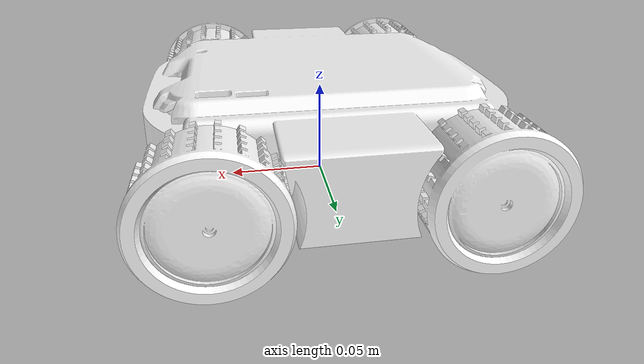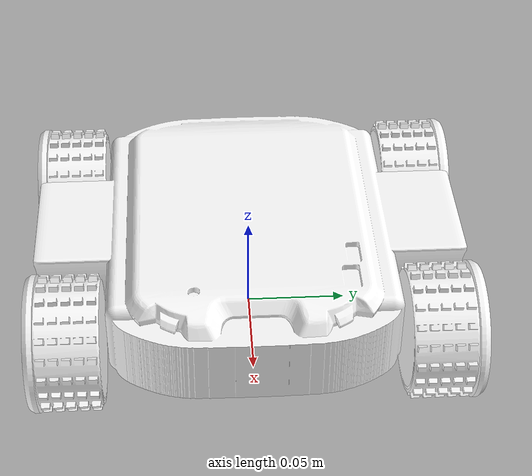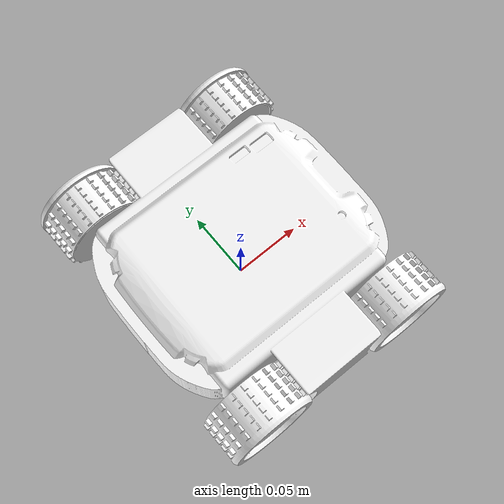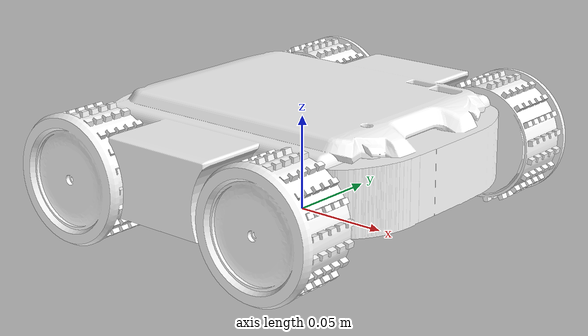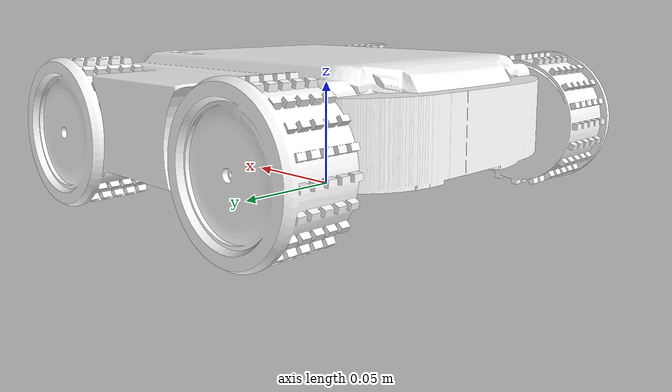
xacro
<?xml version="1.0"?>
<robot xmlns:xacro="http://ros.org/wiki/xacro" name="sphero_rvr">

  <xacro:include filename="$(find sphero_rvr_description)/model/sphero_rvr.urdf.xacro" />

  <xacro:arg name="name" default="rvr" />

  <link name="odom" />

  <xacro:sphero_rvr name="$(arg name)" parent="odom">
    <origin xyz="0.0 0.0 0.0"/>
  </xacro:sphero_rvr>

</robot>

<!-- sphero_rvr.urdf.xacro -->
<robot xmlns:xacro="http://ros.org/wiki/xacro" >

  <xacro:include filename="$(find sphero_rvr_description)/model/materials.urdf"/>
  <xacro:include filename="$(find sphero_rvr_description)/model/sphero_rvr.inertia.xacro"/>
  <xacro:include filename="$(find sphero_rvr_description)/model/sphero_rvr.transmission.xacro"/>
  <!-- Contains macro to create transmissions for simulation -->
  <xacro:include filename="$(find sphero_rvr_description)/model/sphero_rvr.transmission.gazebo.xacro"/>

  <xacro:property name="M_PI" value="3.1415926535897931" />
  <xacro:property name="velocity_scale_factor" value="1.0"/>

  <xacro:macro name="sphero_rvr" params="parent name *origin sim:=^|false">

    <!-- The base fixed to its parent. -->
    <joint name="${parent}_${name}_base_joint" type="fixed">
      <xacro:insert_block name="origin"/>
      <parent link="${parent}"/>
      <child link="${name}_base_link"/>
    </joint>

    <link name="${name}_base_link">
      <inertial>
        <xacro:insert_block name="negligible_inertia"/>
      </inertial>
      <visual>
        <origin xyz="-0.017 -0.101 0.017" rpy="0 0 0"/>
        <geometry>
          <mesh filename="package://sphero_rvr_description/meshes/Sphero_Base.stl" scale="0.001 0.001 0.001" />
        </geometry>
        <material name="SpheroRVR/White"/>
      </visual>
      <collision>
        <origin xyz="0.0 0.0 0.04" rpy="0 0 0"/>
        <geometry>
          <box size="0.2 0.13 0.06"/>
        </geometry>
      </collision>
    </link>

    <!-- Left Front/Rear Wheel -->
    <joint name="${name}_wheel_fl_joint" type="fixed">
      <origin xyz="0.059 0.09 0.03" rpy="0 90 0"/>
      <axis xyz="0 1 0"/>
      <limit effort="30" velocity="1.0" />
      <safety_controller k_velocity="10" k_position="15"  />
      <dynamics friction="1.0" damping="1.0"/>
      <parent link="${name}_base_link"/>
      <child link="${name}_wheel_fl_link"/>
    </joint>

    <joint name="${name}_wheel_rl_joint" type="fixed">
      <origin xyz="-0.059 0.09 0.03" rpy="0 0 0"/>
      <mimic joint="${name}_wheel_fl_joint" multiplier="1" offset="0" />
      <axis xyz="0 1 0"/>
      <limit effort="30" velocity="1.0" />
      <safety_controller k_velocity="10" k_position="15"  />
      <dynamics friction="1.0" damping="1.0"/>
      <parent link="${name}_base_link"/>
      <child link="${name}_wheel_rl_link"/>
    </joint>

    <link name="${name}_wheel_fl_link">
      <inertial>
        <xacro:insert_block name="negligible_inertia"/>
      </inertial>
      <visual>
        <origin xyz="-0.042 0 -0.033" rpy="0 0 0"/>
        <geometry>
           <mesh filename="package://sphero_rvr_description/meshes/Sphero_Wheel_L.stl" scale="0.001 0.001 0.001" />
        </geometry>
        <material name="SpheroRVR/White"/>
      </visual>
      <collision>
        <origin xyz="0.0 0 0.0" rpy="${M_PI/2} 0 0"/>
        <geometry>
          <cylinder radius="0.033" length="0.03"/>
        </geometry>
      </collision>
    </link>

    <link name="${name}_wheel_rl_link">
      <inertial>
        <xacro:insert_block name="negligible_inertia"/>
      </inertial>
      <visual>
        <origin xyz="-0.042 0 -0.033" rpy="0 0 0"/>
        <geometry>
           <mesh filename="package://sphero_rvr_description/meshes/Sphero_Wheel_L.stl" scale="0.001 0.001 0.001" />
        </geometry>
        <material name="SpheroRVR/White"/>
      </visual>
      <collision>
        <origin xyz="0.0 0 0.0" rpy="${M_PI/2} 0 0"/>
        <geometry>
          <cylinder radius="0.033" length="0.03"/>
        </geometry>
      </collision>
    </link>

    <!-- Right Front/Rear Wheel -->
    <joint name="${name}_wheel_fr_joint" type="fixed">
      <origin xyz="0.059 -0.09 0.03" rpy="0 90 0"/>
      <axis xyz="0 1 0"/>
      <limit effort="30" velocity="1.0" />
      <safety_controller k_velocity="10" k_position="15"  />
      <dynamics friction="1.0" damping="1.0"/>
      <parent link="${name}_base_link"/>
      <child link="${name}_wheel_fr_link"/>
    </joint>

    <joint name="${name}_wheel_rr_joint" type="fixed">
      <origin xyz="-0.059 -0.09 0.03" rpy="0 0 0"/>
      <mimic joint="${name}_wheel_fr_joint" multiplier="1" offset="0" />
      <axis xyz="0 1 0"/>
      <limit effort="30" velocity="1.0" />
      <safety_controller k_velocity="10" k_position="15"  />
      <dynamics friction="1.0" damping="1.0"/>
      <parent link="${name}_base_link"/>
      <child link="${name}_wheel_rr_link"/>
    </joint>

    <link name="${name}_wheel_fr_link">
      <inertial>
        <xacro:insert_block name="negligible_inertia"/>
      </inertial>
      <visual>
        <origin xyz="-0.042 0 -0.033" rpy="0 0 0"/>
        <geometry>
           <mesh filename="package://sphero_rvr_description/meshes/Sphero_Wheel_R.stl" scale="0.001 0.001 0.001" />
        </geometry>
        <material name="SpheroRVR/White"/>
      </visual>
      <collision>
        <origin xyz="0.0 0 0.0" rpy="${M_PI/2} 0 0"/>
        <geometry>
          <cylinder radius="0.033" length="0.03"/>
        </geometry>
      </collision>
    </link>

    <link name="${name}_wheel_rr_link">
      <inertial>
        <xacro:insert_block name="negligible_inertia"/>
      </inertial>
      <visual>
        <origin xyz="-0.042 0 -0.033" rpy="0 0 0"/>
        <geometry>
           <mesh filename="package://sphero_rvr_description/meshes/Sphero_Wheel_R.stl" scale="0.001 0.001 0.001" />
        </geometry>
        <material name="SpheroRVR/White"/>
      </visual>
      <collision>
        <origin xyz="0.0 0 0.0" rpy="${M_PI/2} 0 0"/>
        <geometry>
          <cylinder radius="0.033" length="0.03"/>
        </geometry>
      </collision>
    </link>
    <!-- Default use normal transmissions in real world-->
    <xacro:unless value="${sim}">
      <xacro:sphero_rvr_transmission name="${name}"/>
    </xacro:unless>
    <!-- Use these transmissions when using gazebo/sim-->
    <xacro:if value="${sim}">
      <xacro:sphero_rvr_transmission_sim name="${name}"/>
    </xacro:if>
  </xacro:macro>

</robot>

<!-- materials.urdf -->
<robot>
  <material name="SpheroRVR/White">
    <color rgba="1 1 1 1.0"/>
  </material>

  <material name="SpheroRVR/DarkGrey">
    <color rgba="0.3 0.3 0.3 1.0"/>
  </material>

  <material name="SpheroRVR/LightGrey">
    <color rgba="0.8 0.8 0.8 1.0"/>
  </material>

  <material name="SpheroRVR/Black">
    <color rgba="0 0 0 1.0"/>
  </material>

  <material name="SpheroRVR/Grey">
    <color rgba="0.7 0.7 0.7 1.0"/>
  </material>

  <material name="SpheroRVR/Blue">
    <color rgba="0.0 0.0 0.8 1.0"/>
  </material>

</robot>

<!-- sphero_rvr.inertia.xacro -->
<robot xmlns:xacro="http://ros.org/wiki/xacro">

    <!-- NOTE: inertia values are approximated using meshlab and only using the significant elements -->

    <!-- conversions -->
    <!-- I couldn't make the simulation work with realistic values, so I tweaked the conversion values -->
    <xacro:property name="mm_to_m" value="0.001"/>
    <xacro:property name="mm2_to_m2" value="0.001"/>
    <xacro:property name="gr_to_Kg" value="0.001"/>

    <!-- not so negligible, otherwise simulation fails -->
    <xacro:property name="negligible_mass" value="${200*gr_to_Kg}"/>
    <xacro:property name="negligible_inertia">
        <origin xyz="0 0 0"/>
        <mass value="${negligible_mass}"/>
        <inertia ixx="${negligible_mass * 100 * mm2_to_m2}" ixy="0.0" ixz="0.0" iyy="${negligible_mass * 100 * mm2_to_m2}" iyz="0.0" izz="${negligible_mass * 100 * mm2_to_m2}"/>
    </xacro:property>

</robot>
